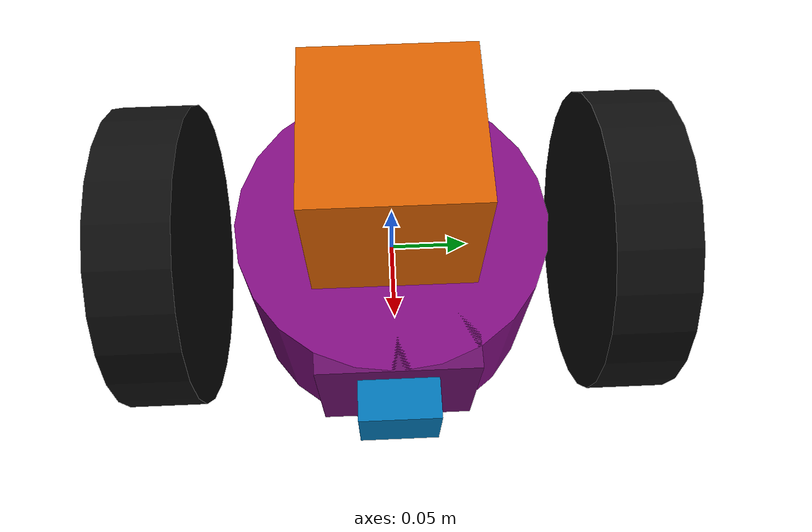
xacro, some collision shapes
<?xml version='1.0'?>

<robot name="my_robot" xmlns:xacro="http://www.ros.org/wiki/xacro">
  <xacro:include filename="$(find my_robot)/urdf/my_robot.gazebo"/>
  <link name="robot_footprint"></link>

  <joint name="robot_footprint_joint" type="fixed">
    <origin xyz="0 0 0" rpy="0 0 0"/>
    <parent link="robot_footprint"/>
    <child link="chassis"/>
  </joint>

  <link name='chassis'>
    <pose>0 0 0.1 0 0 0</pose>

    <inertial>
      <mass value="15.0"/>
      <origin xyz="0.0 0 0" rpy=" 0 0 0"/>
      <inertia ixx="0.1" ixy="0" ixz="0" iyy="0.1" iyz="0" izz="0.1"/>
    </inertial>

    <collision name='chassis_main_collision'>
      <origin xyz="-0.0 0 -0.02" rpy=" 0 0 0"/>
      <geometry>
        <cylinder length="0.12" radius="0.1"/>
      </geometry>
    </collision>
    <visual name='chassis_main_visual'>
      <origin xyz="-0.0 0 -0.02" rpy=" 0 0 0"/>
      <geometry>
        <cylinder length="0.12" radius="0.1"/>
      </geometry>
      <material name="dark_purple">
        <color rgba="0.5 0.05 0.5 1.0"/>
      </material>
    </visual>

    <collision name='lidar_mount_collision'>
      <origin xyz="-0.0 0 0.05" rpy=" 0 0 0"/>
      <geometry>
        <cylinder length="0.04" radius="0.04"/>
      </geometry>
    </collision>
    <visual name='lidar_mount_visual'>
      <origin xyz="-0.0 0 0.05" rpy=" 0 0 0"/>
      <geometry>
        <cylinder length="0.04" radius="0.04"/>
      </geometry>
      <material name="grey">
        <color rgba="0.7 0.7 0.7 1.0"/>
      </material>
    </visual>

    <collision name='chassis_camera_mount_collision'>
      <origin xyz="0.05 0 -0.01" rpy=" 0 0 0"/>
      <geometry>
        <box size=".1 .1 .1"/>
      </geometry>
    </collision>
    <visual name='chassis_camera_mount_visual'>
      <origin xyz="0.05 0 -0.01" rpy=" 0 0 0"/>
      <geometry>
        <box size=".1 .1 .1"/>
      </geometry>
      <material name="dark_purple">
        <color rgba="0.4 0.05 0.4 1.0"/>
      </material>
    </visual>

    <collision name='front_caster_collision'>
      <origin xyz="0.06 0 -0.06" rpy=" 0 0 0"/>
      <geometry>
        <sphere radius="0.0399"/>
      </geometry>
      <surface>
        <friction>
          <ode>
            <mu>0</mu>
            <mu2>0</mu2>
            <slip1>1.0</slip1>
            <slip2>1.0</slip2>
          </ode>
        </friction>
      </surface>
    </collision>

    <visual name='front_caster_visual'>
      <origin xyz="0.06 0 -0.06" rpy=" 0 0 0"/>
      <geometry>
        <sphere radius="0.04"/>
      </geometry>
      <material name="dark_grey">
        <color rgba="0.1 0.01 0.01 1.0"/>
      </material>
    </visual>

    <collision name='back_caster_collision'>
      <origin xyz="-0.06 0 -0.06" rpy=" 0 0 0"/>
      <geometry>
        <sphere radius="0.0399"/>
      </geometry>
      <surface>
        <friction>
          <ode>
            <mu>0</mu>
            <mu2>0</mu2>
            <slip1>1.0</slip1>
            <slip2>1.0</slip2>
          </ode>
        </friction>
      </surface>
    </collision>

    <visual name='back_caster_visual'>
      <origin xyz="-0.06 0 -0.06" rpy=" 0 0 0"/>
      <geometry>
        <sphere radius="0.04"/>
      </geometry>
      <material name="dark_grey">
        <color rgba="0.1 0.01 0.01 1.0"/>
      </material>
    </visual>
  </link>

  <link name='left_wheel'>
    <inertial>
      <mass value="5"/>
      <origin xyz="0 0 0" rpy="0 1.5707 1.5707"/>
      <inertia ixx="0.1" ixy="0" ixz="0" iyy="0.1" iyz="0" izz="0.1"/>
    </inertial>

    <collision name='left_wheel_collision'>
      <origin xyz="0 0 0" rpy="0 1.5707 1.5707"/>
      <geometry>
        <cylinder length="0.05" radius="0.1"/>
      </geometry>
    </collision>

    <visual name='left_wheel_visual'>
      <origin xyz="0 0 0" rpy="0 1.5707 1.5707"/>
      <geometry>
        <cylinder length="0.05" radius="0.1"/>
      </geometry>
      <material name="dark_grey">
        <color rgba="0.05 0.05 0.05 1.0"/>
      </material>
    </visual>
  </link>

  <joint type="continuous" name="left_wheel_hinge">
    <origin xyz="0 0.15 0" rpy="0 0 0"/>
    <child link="left_wheel"/>
    <parent link="chassis"/>
    <axis xyz="0 1 0" rpy="0 0 0"/>
    <limit effort="10000" velocity="1000"/>
    <dynamics damping="1.0" friction="1.0"/>
  </joint>

  <link name='right_wheel'>
    <inertial>
      <mass value="5"/>
      <origin xyz="0 0 0" rpy="0 1.5707 1.5707"/>
      <inertia ixx="0.1" ixy="0" ixz="0" iyy="0.1" iyz="0" izz="0.1"/>
    </inertial>

    <collision name='right_wheel_collision'>
      <origin xyz="0 0 0" rpy="0 1.5707 1.5707"/>
      <geometry>
        <cylinder length="0.05" radius="0.1"/>
      </geometry>
    </collision>

    <visual name='right_wheel_visual'>
      <origin xyz="0 0 0" rpy="0 1.5707 1.5707"/>
      <geometry>
        <cylinder length="0.05" radius="0.1"/>
      </geometry>
      <material name="dark_grey">
        <color rgba="0.05 0.05 0.05 1.0"/>
      </material>
    </visual>
  </link>

  <joint type="continuous" name="right_wheel_hinge">
    <origin xyz="0 -0.15 0" rpy="0 0 0"/>
    <child link="right_wheel"/>
    <parent link="chassis"/>
    <axis xyz="0 1 0" rpy="0 0 0"/>
    <limit effort="10000" velocity="1000"/>
    <dynamics damping="1.0" friction="1.0"/>
  </joint>

  <link name='camera'>
    <inertial>
      <mass value="0.1"/>
      <origin xyz="0.05 0.05 0.05" rpy="0 0 0"/>
      <inertia ixx="1e-6" ixy="0" ixz="0" iyy="1e-6" iyz="0" izz="1e-6"/>
    </inertial>

    <collision name='camera_collision'>
      <origin xyz="0 0 0" rpy="0 0 0"/>
      <geometry>
        <box size="0.05 0.05 0.05"/>
      </geometry>
    </collision>

    <visual name='camera_visual'>
      <origin xyz="0 0 0" rpy="0 0 0"/>
      <geometry>
        <box size="0.05 0.05 0.05"/>
      </geometry>
    </visual>
  </link>

  <joint type="fixed" name="camera_joint">
    <origin xyz="0.1 0 0.0" rpy="0 0 0"/>
    <child link="camera"/>
    <parent link="chassis"/>
    <axis xyz="0 1 0" rpy="0 0 0"/>
  </joint>

  <link name='hokuyo'>
    <inertial>
      <mass value="1e-5"/>
      <origin xyz="0 0 0" rpy="0 0 0"/>
      <inertia ixx="1e-6" ixy="0" ixz="0" iyy="1e-6" iyz="0" izz="1e-6"/>
    </inertial>

    <collision name='camera_collision'>
      <origin xyz="0 0 0" rpy="0 0 0"/>
      <geometry>
        <box size="0.1 0.1 0.1"/>
      </geometry>
    </collision>

    <visual name='camera_visual'>
      <origin xyz="0 0 0" rpy="0 0 0"/>
      <geometry>
        <mesh filename="package://my_robot/meshes/hokuyo.dae"/>
      </geometry>
    </visual>
  </link>

  <joint type="fixed" name="hokuyo_joint">
    <origin xyz="0 0 0.1" rpy="0 0 0"/>
    <child link="hokuyo"/>
    <parent link="chassis"/>
    <axis xyz="0 1 0" rpy="0 0 0"/>
  </joint>

</robot>
